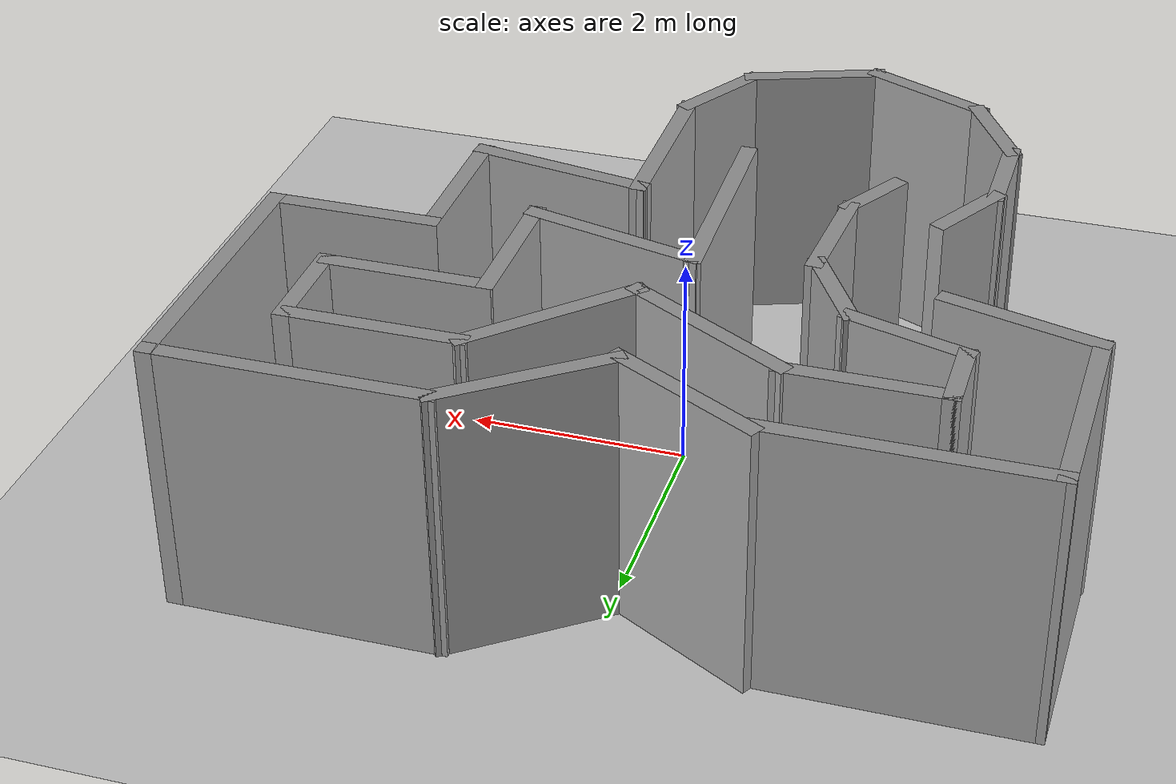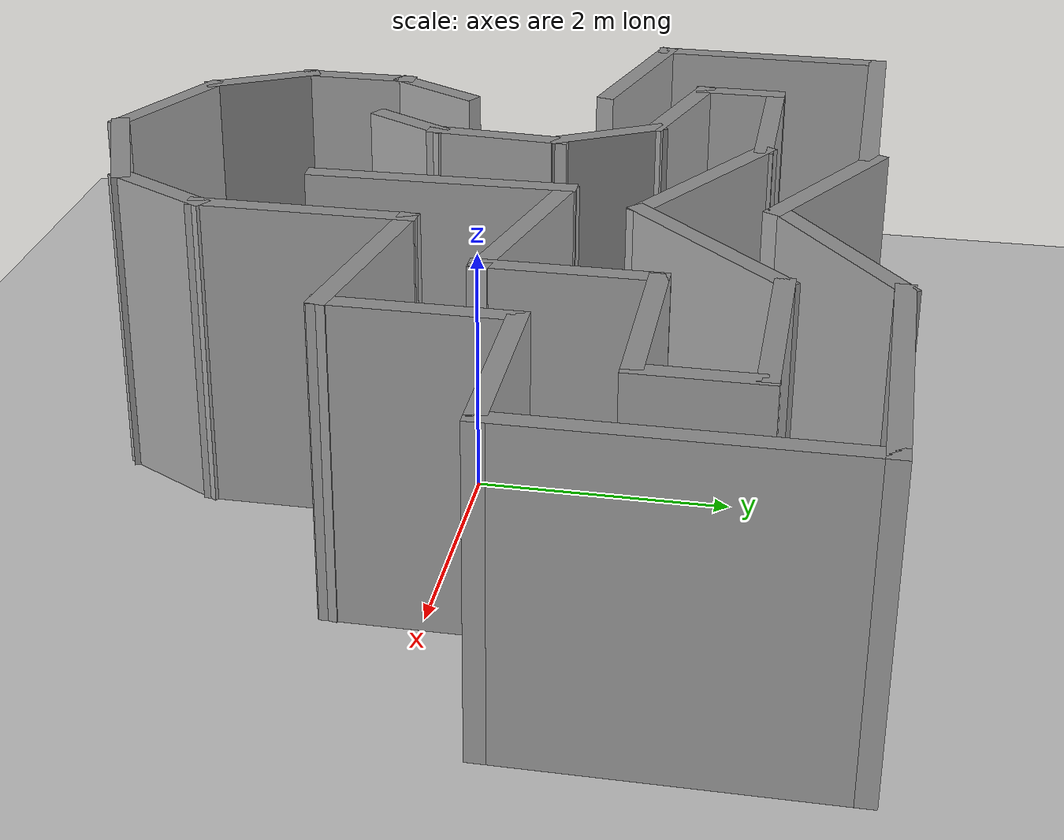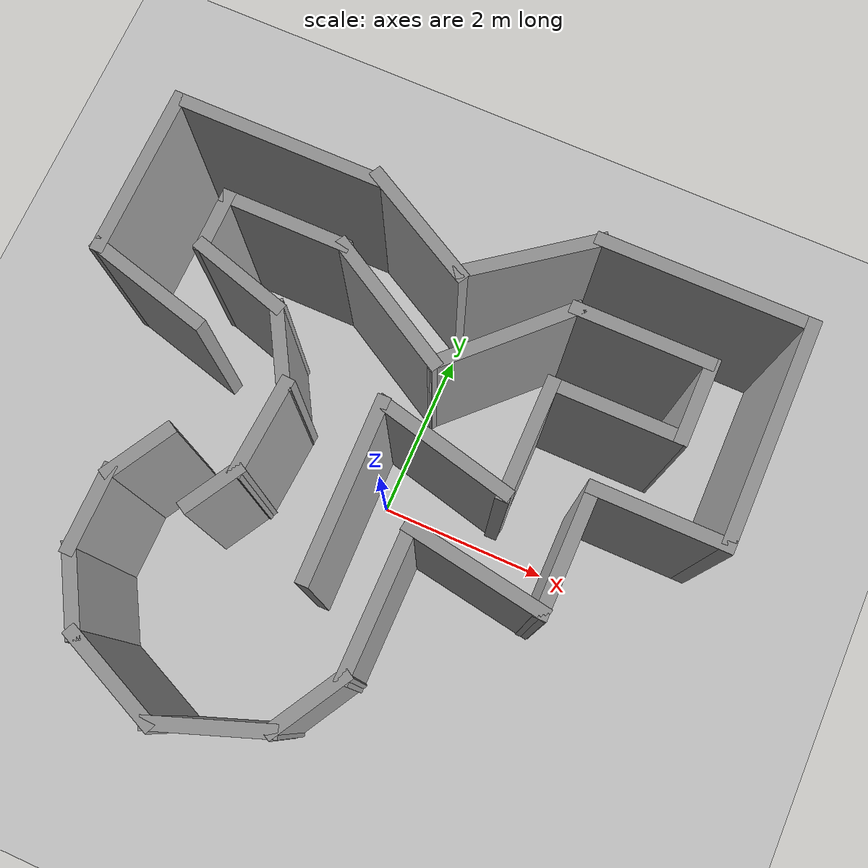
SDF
<sdf version="1.7">
 <world name="default">
  <light name="sun" type="directional">
   <pose>0 0 10 0 -0 0</pose>
   <diffuse>0.8 0.8 0.8 1</diffuse>
   <specular>0.2 0.2 0.2 1</specular>
   <attenuation>
    <range>1000</range>
    <constant>0.9</constant>
    <linear>0.01</linear>
    <quadratic>0.001</quadratic>
   </attenuation>
   <direction>-0.5 0.1 -0.9</direction>
   <spot><inner_angle>0</inner_angle><outer_angle>0</outer_angle><falloff>0</falloff></spot>
  </light>
  <model name="ground_plane">
   <static>1</static>
   <link name="link">
    <collision name="collision">
     <geometry><plane><normal>0 0 1</normal><size>100 100</size></plane></geometry>
     <surface><friction><ode><mu>100</mu><mu2>50</mu2></ode></friction></surface>
    </collision>
    <visual name="visual">
     <cast_shadows>0</cast_shadows>
     <geometry><plane><normal>0 0 1</normal><size>100 100</size></plane></geometry>
     <material>
      <script><uri>file://media/materials/scripts/gazebo.material</uri><name>Gazebo/Grey</name></script>
     </material>
    </visual>
   </link>
  </model>
  <gravity>0 0 -9.8</gravity>
  <magnetic_field>6e-06 2.3e-05 -4.2e-05</magnetic_field>
  <atmosphere type="adiabatic"/>
  <physics type="ode">
   <max_step_size>0.001</max_step_size>
   <real_time_factor>1</real_time_factor>
   <real_time_update_rate>1000</real_time_update_rate>
  </physics>
  <scene><ambient>0.4 0.4 0.4 1</ambient><background>0.7 0.7 0.7 1</background><shadows>1</shadows></scene>
  <audio><device>default</device></audio>
  <spherical_coordinates>
   <surface_model>EARTH_WGS84</surface_model>
   <latitude_deg>0</latitude_deg>
   <longitude_deg>0</longitude_deg>
   <elevation>0</elevation>
   <heading_deg>0</heading_deg>
  </spherical_coordinates>
  <model name="walls_map2_resized">
   <pose>-0.084367 0.010531 0 0 -0 0</pose>
   <link name="Wall_0">
    <collision name="Wall_0_Collision">
     <geometry><box><size>0.861634 0.15 2.5</size></box></geometry>
     <pose>0 0 1.25 0 -0 0</pose>
    </collision>
    <visual name="Wall_0_Visual">
     <pose>0 0 1.25 0 -0 0</pose>
     <geometry><box><size>0.861634 0.15 2.5</size></box></geometry>
     <material>
      <script><uri>file://media/materials/scripts/gazebo.material</uri><name>Gazebo/Grey</name></script>
      <ambient>1 1 1 1</ambient>
     </material>
     <meta><layer>0</layer></meta>
    </visual>
    <pose>-2.20063 -0.820339 0 0 -0 -2.08498</pose>
   </link>
   <link name="Wall_1">
    <collision name="Wall_1_Collision">
     <geometry><box><size>1 0.15 2.5</size></box></geometry>
     <pose>0 0 1.25 0 -0 0</pose>
    </collision>
    <visual name="Wall_1_Visual">
     <pose>0 0 1.25 0 -0 0</pose>
     <geometry><box><size>1 0.15 2.5</size></box></geometry>
     <material>
      <script><uri>file://media/materials/scripts/gazebo.material</uri><name>Gazebo/Grey</name></script>
      <ambient>1 1 1 1</ambient>
     </material>
     <meta><layer>0</layer></meta>
    </visual>
    <pose>-2.38563 -1.54515 0 0 -0 -1.5708</pose>
   </link>
   <link name="Wall_10">
    <collision name="Wall_10_Collision">
     <geometry><box><size>1.6965 0.15 2.5</size></box></geometry>
     <pose>0 0 1.25 0 -0 0</pose>
    </collision>
    <visual name="Wall_10_Visual">
     <pose>0 0 1.25 0 -0 0</pose>
     <geometry><box><size>1.6965 0.15 2.5</size></box></geometry>
     <material>
      <script><uri>file://media/materials/scripts/gazebo.material</uri><name>Gazebo/Grey</name></script>
      <ambient>1 1 1 1</ambient>
     </material>
     <meta><layer>0</layer></meta>
    </visual>
    <pose>1.39225 -0.552501 0 0 -0 -0.165062</pose>
   </link>
   <link name="Wall_12">
    <collision name="Wall_12_Collision">
     <geometry><box><size>1.5 0.15 2.5</size></box></geometry>
     <pose>0 0 1.25 0 -0 0</pose>
    </collision>
    <visual name="Wall_12_Visual">
     <pose>0 0 1.25 0 -0 0</pose>
     <geometry><box><size>1.5 0.15 2.5</size></box></geometry>
     <material>
      <script><uri>file://media/materials/scripts/gazebo.material</uri><name>Gazebo/Grey</name></script>
      <ambient>1 1 1 1</ambient>
     </material>
     <meta><layer>0</layer></meta>
    </visual>
    <pose>2.15499 -0.004556 0 0 -0 1.5708</pose>
   </link>
   <link name="Wall_13">
    <collision name="Wall_13_Collision">
     <geometry><box><size>1.59 0.15 2.5</size></box></geometry>
     <pose>0 0 1.25 0 -0 0</pose>
    </collision>
    <visual name="Wall_13_Visual">
     <pose>0 0 1.25 0 -0 0</pose>
     <geometry><box><size>1.59 0.15 2.5</size></box></geometry>
     <material>
      <script><uri>file://media/materials/scripts/gazebo.material</uri><name>Gazebo/Grey</name></script>
      <ambient>1 1 1 1</ambient>
     </material>
     <meta><layer>0</layer></meta>
    </visual>
    <pose>2.875 0.670444 0 0 -0 0</pose>
   </link>
   <link name="Wall_15">
    <collision name="Wall_15_Collision">
     <geometry><box><size>2.65 0.15 2.5</size></box></geometry>
     <pose>0 0 1.25 0 -0 0</pose>
    </collision>
    <visual name="Wall_15_Visual">
     <pose>0 0 1.25 0 -0 0</pose>
     <geometry><box><size>2.65 0.15 2.5</size></box></geometry>
     <material>
      <script><uri>file://media/materials/scripts/gazebo.material</uri><name>Gazebo/Grey</name></script>
      <ambient>1 1 1 1</ambient>
     </material>
     <meta><layer>0</layer></meta>
    </visual>
    <pose>3.59499 1.92044 0 0 -0 1.5708</pose>
   </link>
   <link name="Wall_19">
    <collision name="Wall_19_Collision">
     <geometry><box><size>2.5 0.15 2.5</size></box></geometry>
     <pose>0 0 1.25 0 -0 0</pose>
    </collision>
    <visual name="Wall_19_Visual">
     <pose>0 0 1.25 0 -0 0</pose>
     <geometry><box><size>2.5 0.15 2.5</size></box></geometry>
     <material>
      <script><uri>file://media/materials/scripts/gazebo.material</uri><name>Gazebo/Grey</name></script>
      <ambient>1 1 1 1</ambient>
     </material>
     <meta><layer>0</layer></meta>
    </visual>
    <pose>2.42 3.17044 0 0 -0 3.14159</pose>
   </link>
   <link name="Wall_20">
    <collision name="Wall_20_Collision">
     <geometry><box><size>1.67813 0.15 2.5</size></box></geometry>
     <pose>0 0 1.25 0 -0 0</pose>
    </collision>
    <visual name="Wall_20_Visual">
     <pose>0 0 1.25 0 -0 0</pose>
     <geometry><box><size>1.67813 0.15 2.5</size></box></geometry>
     <material>
      <script><uri>file://media/materials/scripts/gazebo.material</uri><name>Gazebo/Grey</name></script>
      <ambient>1 1 1 1</ambient>
     </material>
     <meta><layer>0</layer></meta>
    </visual>
    <pose>0.634341 2.71121 0 0 -0 -2.49678</pose>
   </link>
   <link name="Wall_21">
    <collision name="Wall_21_Collision">
     <geometry><box><size>1.55926 0.15 2.5</size></box></geometry>
     <pose>0 0 1.25 0 -0 0</pose>
    </collision>
    <visual name="Wall_21_Visual">
     <pose>0 0 1.25 0 -0 0</pose>
     <geometry><box><size>1.55926 0.15 2.5</size></box></geometry>
     <material>
      <script><uri>file://media/materials/scripts/gazebo.material</uri><name>Gazebo/Grey</name></script>
      <ambient>1 1 1 1</ambient>
     </material>
     <meta><layer>0</layer></meta>
    </visual>
    <pose>-0.593531 2.5571 0 0 -0 2.63819</pose>
   </link>
   <link name="Wall_22">
    <collision name="Wall_22_Collision">
     <geometry><box><size>2.5 0.15 2.5</size></box></geometry>
     <pose>0 0 1.25 0 -0 0</pose>
    </collision>
    <visual name="Wall_22_Visual">
     <pose>0 0 1.25 0 -0 0</pose>
     <geometry><box><size>2.5 0.15 2.5</size></box></geometry>
     <material>
      <script><uri>file://media/materials/scripts/gazebo.material</uri><name>Gazebo/Grey</name></script>
      <ambient>1 1 1 1</ambient>
     </material>
     <meta><layer>0</layer></meta>
    </visual>
    <pose>-2.38575 2.84485 0 0 -0 3.14159</pose>
   </link>
   <link name="Wall_23">
    <collision name="Wall_23_Collision">
     <geometry><box><size>2.00008 0.15 2.5</size></box></geometry>
     <pose>0 0 1.25 0 -0 0</pose>
    </collision>
    <visual name="Wall_23_Visual">
     <pose>0 0 1.25 0 -0 0</pose>
     <geometry><box><size>2.00008 0.15 2.5</size></box></geometry>
     <material>
      <script><uri>file://media/materials/scripts/gazebo.material</uri><name>Gazebo/Grey</name></script>
      <ambient>1 1 1 1</ambient>
     </material>
     <meta><layer>0</layer></meta>
    </visual>
    <pose>-3.56944 1.91985 0 0 -0 -1.5802</pose>
   </link>
   <link name="Wall_24">
    <collision name="Wall_24_Collision">
     <geometry><box><size>1.5 0.15 2.5</size></box></geometry>
     <pose>0 0 1.25 0 -0 0</pose>
    </collision>
    <visual name="Wall_24_Visual">
     <pose>0 0 1.25 0 -0 0</pose>
     <geometry><box><size>1.5 0.15 2.5</size></box></geometry>
     <material>
      <script><uri>file://media/materials/scripts/gazebo.material</uri><name>Gazebo/Grey</name></script>
      <ambient>1 1 1 1</ambient>
     </material>
     <meta><layer>0</layer></meta>
    </visual>
    <pose>-2.92614 0.820147 0 0 -0 -0.261799</pose>
   </link>
   <link name="Wall_26">
    <collision name="Wall_26_Collision">
     <geometry><box><size>0.75 0.15 2.5</size></box></geometry>
     <pose>0 0 1.25 0 -0 0</pose>
    </collision>
    <visual name="Wall_26_Visual">
     <pose>0 0 1.25 0 -0 0</pose>
     <geometry><box><size>0.75 0.15 2.5</size></box></geometry>
     <material>
      <script><uri>file://media/materials/scripts/gazebo.material</uri><name>Gazebo/Grey</name></script>
      <ambient>1 1 1 1</ambient>
     </material>
     <meta><layer>0</layer></meta>
    </visual>
    <pose>-1.35702 -0.854071 0 0 -0 1.0472</pose>
   </link>
   <link name="Wall_27">
    <collision name="Wall_27_Collision">
     <geometry><box><size>1.15892 0.15 2.5</size></box></geometry>
     <pose>0 0 1.25 0 -0 0</pose>
    </collision>
    <visual name="Wall_27_Visual">
     <pose>0 0 1.25 0 -0 0</pose>
     <geometry><box><size>1.15892 0.15 2.5</size></box></geometry>
     <material>
      <script><uri>file://media/materials/scripts/gazebo.material</uri><name>Gazebo/Grey</name></script>
      <ambient>1 1 1 1</ambient>
     </material>
     <meta><layer>0</layer></meta>
    </visual>
    <pose>-1.17224 -0.091003 0 0 -0 1.50179</pose>
   </link>
   <link name="Wall_28">
    <collision name="Wall_28_Collision">
     <geometry><box><size>1 0.15 2.5</size></box></geometry>
     <pose>0 0 1.25 0 -0 0</pose>
    </collision>
    <visual name="Wall_28_Visual">
     <pose>0 0 1.25 0 -0 0</pose>
     <geometry><box><size>1 0.15 2.5</size></box></geometry>
     <material>
      <script><uri>file://media/materials/scripts/gazebo.material</uri><name>Gazebo/Grey</name></script>
      <ambient>1 1 1 1</ambient>
     </material>
     <meta><layer>0</layer></meta>
    </visual>
    <pose>-1.36735 0.762928 0 0 -0 2.0944</pose>
   </link>
   <link name="Wall_29">
    <collision name="Wall_29_Collision">
     <geometry><box><size>1.19156 0.15 2.5</size></box></geometry>
     <pose>0 0 1.25 0 -0 0</pose>
    </collision>
    <visual name="Wall_29_Visual">
     <pose>0 0 1.25 0 -0 0</pose>
     <geometry><box><size>1.19156 0.15 2.5</size></box></geometry>
     <material>
      <script><uri>file://media/materials/scripts/gazebo.material</uri><name>Gazebo/Grey</name></script>
      <ambient>1 1 1 1</ambient>
     </material>
     <meta><layer>0</layer></meta>
    </visual>
    <pose>-2.07896 1.27967 0 0 -0 2.85206</pose>
   </link>
   <link name="Wall_3">
    <collision name="Wall_3_Collision">
     <geometry><box><size>1 0.15 2.5</size></box></geometry>
     <pose>0 0 1.25 0 -0 0</pose>
    </collision>
    <visual name="Wall_3_Visual">
     <pose>0 0 1.25 0 -0 0</pose>
     <geometry><box><size>1 0.15 2.5</size></box></geometry>
     <material>
      <script><uri>file://media/materials/scripts/gazebo.material</uri><name>Gazebo/Grey</name></script>
      <ambient>1 1 1 1</ambient>
     </material>
     <meta><layer>0</layer></meta>
    </visual>
    <pose>-2.17313 -2.33821 0 0 -0 -1.0472</pose>
   </link>
   <link name="Wall_30">
    <collision name="Wall_30_Collision">
     <geometry><box><size>0.75 0.15 2.5</size></box></geometry>
     <pose>0 0 1.25 0 -0 0</pose>
    </collision>
    <visual name="Wall_30_Visual">
     <pose>0 0 1.25 0 -0 0</pose>
     <geometry><box><size>0.75 0.15 2.5</size></box></geometry>
     <material>
      <script><uri>file://media/materials/scripts/gazebo.material</uri><name>Gazebo/Grey</name></script>
      <ambient>1 1 1 1</ambient>
     </material>
     <meta><layer>0</layer></meta>
    </visual>
    <pose>-2.57806 1.72836 0 0 -0 1.5708</pose>
   </link>
   <link name="Wall_31">
    <collision name="Wall_31_Collision">
     <geometry><box><size>1.5 0.15 2.5</size></box></geometry>
     <pose>0 0 1.25 0 -0 0</pose>
    </collision>
    <visual name="Wall_31_Visual">
     <pose>0 0 1.25 0 -0 0</pose>
     <geometry><box><size>1.5 0.15 2.5</size></box></geometry>
     <material>
      <script><uri>file://media/materials/scripts/gazebo.material</uri><name>Gazebo/Grey</name></script>
      <ambient>1 1 1 1</ambient>
     </material>
     <meta><layer>0</layer></meta>
    </visual>
    <pose>-1.90306 2.02836 0 0 -0 0</pose>
   </link>
   <link name="Wall_32">
    <collision name="Wall_32_Collision">
     <geometry><box><size>1.75 0.15 2.5</size></box></geometry>
     <pose>0 0 1.25 0 -0 0</pose>
    </collision>
    <visual name="Wall_32_Visual">
     <pose>0 0 1.25 0 -0 0</pose>
     <geometry><box><size>1.75 0.15 2.5</size></box></geometry>
     <material>
      <script><uri>file://media/materials/scripts/gazebo.material</uri><name>Gazebo/Grey</name></script>
      <ambient>1 1 1 1</ambient>
     </material>
     <meta><layer>0</layer></meta>
    </visual>
    <pose>-0.535241 1.62836 0 0 -0 -0.523599</pose>
   </link>
   <link name="Wall_33">
    <collision name="Wall_33_Collision">
     <geometry><box><size>1.75 0.15 2.5</size></box></geometry>
     <pose>0 0 1.25 0 -0 0</pose>
    </collision>
    <visual name="Wall_33_Visual">
     <pose>0 0 1.25 0 -0 0</pose>
     <geometry><box><size>1.75 0.15 2.5</size></box></geometry>
     <material>
      <script><uri>file://media/materials/scripts/gazebo.material</uri><name>Gazebo/Grey</name></script>
      <ambient>1 1 1 1</ambient>
     </material>
     <meta><layer>0</layer></meta>
    </visual>
    <pose>0.723265 1.79405 0 0 -0 0.785398</pose>
   </link>
   <link name="Wall_34">
    <collision name="Wall_34_Collision">
     <geometry><box><size>1.61087 0.15 2.5</size></box></geometry>
     <pose>0 0 1.25 0 -0 0</pose>
    </collision>
    <visual name="Wall_34_Visual">
     <pose>0 0 1.25 0 -0 0</pose>
     <geometry><box><size>1.61087 0.15 2.5</size></box></geometry>
     <material>
      <script><uri>file://media/materials/scripts/gazebo.material</uri><name>Gazebo/Grey</name></script>
      <ambient>1 1 1 1</ambient>
     </material>
     <meta><layer>0</layer></meta>
    </visual>
    <pose>2.01939 2.35973 0 0 -0 0</pose>
   </link>
   <link name="Wall_35">
    <collision name="Wall_35_Collision">
     <geometry><box><size>1 0.15 2.5</size></box></geometry>
     <pose>0 0 1.25 0 -0 0</pose>
    </collision>
    <visual name="Wall_35_Visual">
     <pose>0 0 1.25 0 -0 0</pose>
     <geometry><box><size>1 0.15 2.5</size></box></geometry>
     <material>
      <script><uri>file://media/materials/scripts/gazebo.material</uri><name>Gazebo/Grey</name></script>
      <ambient>1 1 1 1</ambient>
     </material>
     <meta><layer>0</layer></meta>
    </visual>
    <pose>2.7846 1.93473 0 0 -0 -1.5708</pose>
   </link>
   <link name="Wall_36">
    <collision name="Wall_36_Collision">
     <geometry><box><size>1.52391 0.15 2.5</size></box></geometry>
     <pose>0 0 1.25 0 -0 0</pose>
    </collision>
    <visual name="Wall_36_Visual">
     <pose>0 0 1.25 0 -0 0</pose>
     <geometry><box><size>1.52391 0.15 2.5</size></box></geometry>
     <material>
      <script><uri>file://media/materials/scripts/gazebo.material</uri><name>Gazebo/Grey</name></script>
      <ambient>1 1 1 1</ambient>
     </material>
     <meta><layer>0</layer></meta>
    </visual>
    <pose>2.06286 1.50973 0 0 -0 3.14159</pose>
   </link>
   <link name="Wall_37">
    <collision name="Wall_37_Collision">
     <geometry><box><size>1.40652 0.15 2.5</size></box></geometry>
     <pose>0 0 1.25 0 -0 0</pose>
    </collision>
    <visual name="Wall_37_Visual">
     <pose>0 0 1.25 0 -0 0</pose>
     <geometry><box><size>1.40652 0.15 2.5</size></box></geometry>
     <material>
      <script><uri>file://media/materials/scripts/gazebo.material</uri><name>Gazebo/Grey</name></script>
      <ambient>1 1 1 1</ambient>
     </material>
     <meta><layer>0</layer></meta>
    </visual>
    <pose>1.35852 0.88147 0 0 -0 -1.5708</pose>
   </link>
   <link name="Wall_38">
    <collision name="Wall_38_Collision">
     <geometry><box><size>1.68809 0.15 2.5</size></box></geometry>
     <pose>0 0 1.25 0 -0 0</pose>
    </collision>
    <visual name="Wall_38_Visual">
     <pose>0 0 1.25 0 -0 0</pose>
     <geometry><box><size>1.68809 0.15 2.5</size></box></geometry>
     <material>
      <script><uri>file://media/materials/scripts/gazebo.material</uri><name>Gazebo/Grey</name></script>
      <ambient>1 1 1 1</ambient>
     </material>
     <meta><layer>0</layer></meta>
    </visual>
    <pose>0.610864 0.450739 0 0 -0 2.90516</pose>
   </link>
   <link name="Wall_39">
    <collision name="Wall_39_Collision">
     <geometry><box><size>2.09379 0.15 2.5</size></box></geometry>
     <pose>0 0 1.25 0 -0 0</pose>
    </collision>
    <visual name="Wall_39_Visual">
     <pose>0 0 1.25 0 -0 0</pose>
     <geometry><box><size>2.09379 0.15 2.5</size></box></geometry>
     <material>
      <script><uri>file://media/materials/scripts/gazebo.material</uri><name>Gazebo/Grey</name></script>
      <ambient>1 1 1 1</ambient>
     </material>
     <meta><layer>0</layer></meta>
    </visual>
    <pose>-0.136788 -0.340863 0 0 -0 -1.5529</pose>
   </link>
   <link name="Wall_4">
    <collision name="Wall_4_Collision">
     <geometry><box><size>1.29367 0.15 2.5</size></box></geometry>
     <pose>0 0 1.25 0 -0 0</pose>
    </collision>
    <visual name="Wall_4_Visual">
     <pose>0 0 1.25 0 -0 0</pose>
     <geometry><box><size>1.29367 0.15 2.5</size></box></geometry>
     <material>
      <script><uri>file://media/materials/scripts/gazebo.material</uri><name>Gazebo/Grey</name></script>
      <ambient>1 1 1 1</ambient>
     </material>
     <meta><layer>0</layer></meta>
    </visual>
    <pose>-1.43932 -2.94127 0 0 -0 -0.423506</pose>
   </link>
   <link name="Wall_6">
    <collision name="Wall_6_Collision">
     <geometry><box><size>1.34324 0.15 2.5</size></box></geometry>
     <pose>0 0 1.25 0 -0 0</pose>
    </collision>
    <visual name="Wall_6_Visual">
     <pose>0 0 1.25 0 -0 0</pose>
     <geometry><box><size>1.34324 0.15 2.5</size></box></geometry>
     <material>
      <script><uri>file://media/materials/scripts/gazebo.material</uri><name>Gazebo/Grey</name></script>
      <ambient>1 1 1 1</ambient>
     </material>
     <meta><layer>0</layer></meta>
    </visual>
    <pose>-0.356746 -2.97392 0 0 -0 0.346024</pose>
   </link>
   <link name="Wall_7">
    <collision name="Wall_7_Collision">
     <geometry><box><size>1 0.15 2.5</size></box></geometry>
     <pose>0 0 1.25 0 -0 0</pose>
    </collision>
    <visual name="Wall_7_Visual">
     <pose>0 0 1.25 0 -0 0</pose>
     <geometry><box><size>1 0.15 2.5</size></box></geometry>
     <material>
      <script><uri>file://media/materials/scripts/gazebo.material</uri><name>Gazebo/Grey</name></script>
      <ambient>1 1 1 1</ambient>
     </material>
     <meta><layer>0</layer></meta>
    </visual>
    <pose>0.417014 -2.39351 0 0 -0 1.0472</pose>
   </link>
   <link name="Wall_9">
    <collision name="Wall_9_Collision">
     <geometry><box><size>1.75 0.15 2.5</size></box></geometry>
     <pose>0 0 1.25 0 -0 0</pose>
    </collision>
    <visual name="Wall_9_Visual">
     <pose>0 0 1.25 0 -0 0</pose>
     <geometry><box><size>1.75 0.15 2.5</size></box></geometry>
     <material>
      <script><uri>file://media/materials/scripts/gazebo.material</uri><name>Gazebo/Grey</name></script>
      <ambient>1 1 1 1</ambient>
     </material>
     <meta><layer>0</layer></meta>
    </visual>
    <pose>0.629514 -1.22544 0 0 -0 1.5708</pose>
   </link>
   <static>1</static>
  </model>
 </world>
</sdf>
